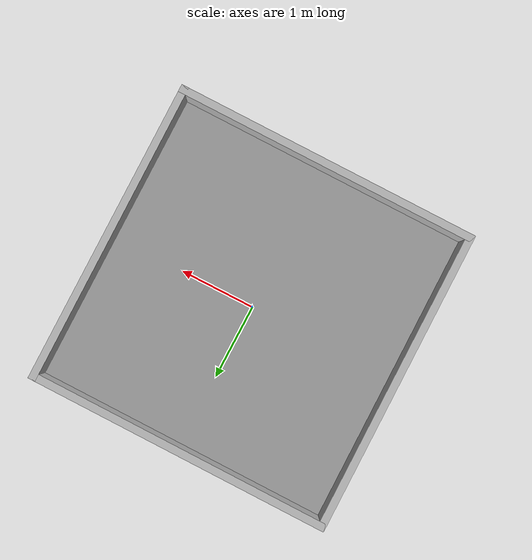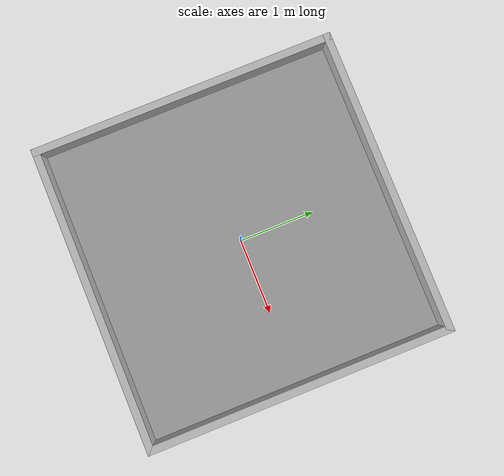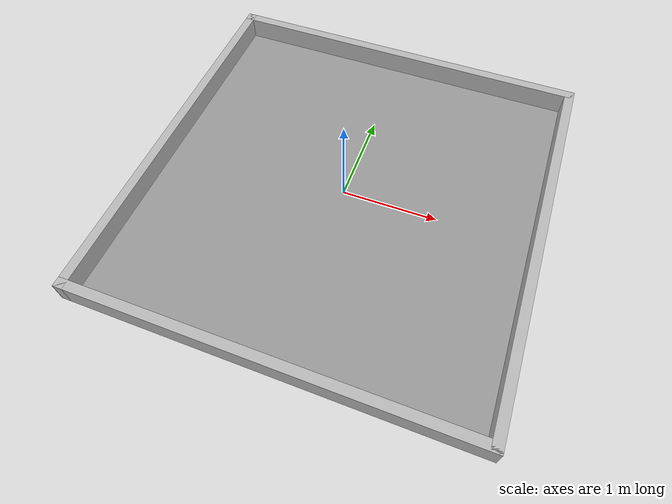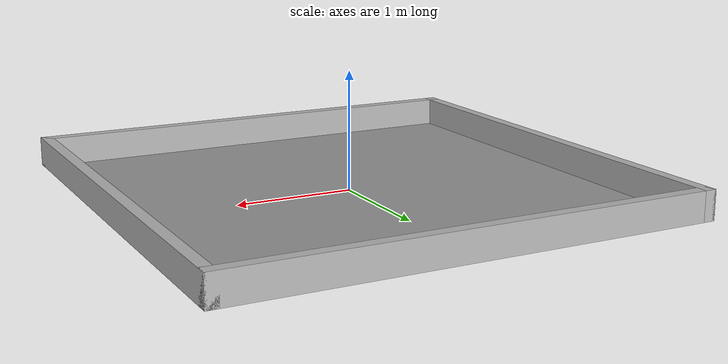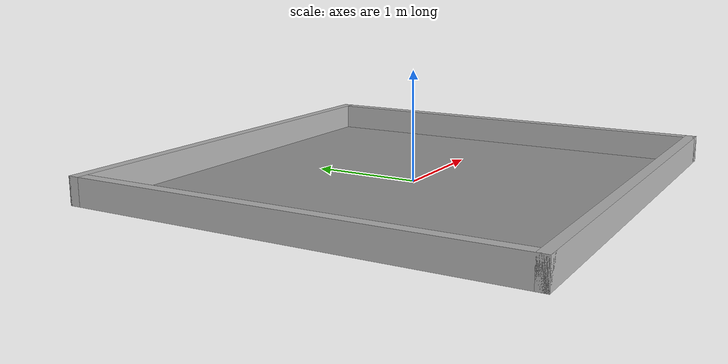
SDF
<?xml version="1.0" ?>
<sdf version="1.4">
  <!-- We use a custom world for the robobo so that the camera angle is launched correctly -->

  <world name="default">

    <model name="my_ground_plane">
      <static>true</static>
      <link name="link">
        <collision name="collision">
          <geometry>
            <plane>
              <normal>0 0 1</normal>
              <size>4 4</size>
            </plane>
          </geometry>
          <surface>
            <friction>
              <ode>
                <mu>100</mu>
                <mu2>50</mu2>
              </ode>
            </friction>
          </surface>
          <max_contacts>10</max_contacts>
        </collision>
        <visual name="visual">
          <cast_shadows>false</cast_shadows>
          <geometry>
            <plane>
              <normal>0 0 1</normal>
              <size>4 4</size>
            </plane>
          </geometry>
          <material>
            <script>
              <name>Gazebo/Grey</name>
            </script>
          </material>
        </visual>
        <self_collide>0</self_collide>
        <kinematic>0</kinematic>
        <gravity>1</gravity>
      </link>
    </model>

    <!-- Global light source -->

    <light name='user_directional_light_0' type='directional'>
      <pose frame=''>0.0 0.0 1 0 -0 0</pose>
      <diffuse>0.5 0.5 0.5 1</diffuse>
      <specular>0.1 0.1 0.1 1</specular>
      <direction>0.1 0.1 -0.9</direction>
      <attenuation>
        <range>20</range>
        <constant>0.5</constant>
        <linear>0.01</linear>
        <quadratic>0.001</quadratic>
      </attenuation>
      <cast_shadows>1</cast_shadows>
    </light>

    <physics type="ode">
      <max_step_size>0.001</max_step_size>
      <real_time_factor>1</real_time_factor>
      <real_time_update_rate>2000</real_time_update_rate>
      <ode>
        <solver>
          <type>quick</type>
          <iters>100</iters>
          <sor>1.3</sor>
        </solver>
        <constraints>
          <cfm>0</cfm>
          <erp>0.2</erp>
          <contact_max_correcting_vel>100</contact_max_correcting_vel>
          <contact_surface_layer>0.001</contact_surface_layer>
        </constraints>
      </ode>
    </physics>

    <!-- Focus camera on tall pendulum -->
    <gui fullscreen='0'>
      <camera name='user_camera'>
        <pose>0 0 7 0 1.570796 1.570796</pose>
        <view_controller>orbit</view_controller>
      </camera>
    </gui>

    <model name="walls">
        <static>1</static>
        <link name='wall1'>
            <pose>0 2 0.125 0 0 0</pose>
            <collision name='wall_body'>
                <geometry>
                    <box>
                        <size>4.1 0.1 0.25</size>
                    </box>
                </geometry>
            </collision>
            <visual name='wall_visual'>
                <geometry>
                    <box>
                        <size>4.1 0.1 0.25</size>
                    </box>
                </geometry>

            </visual>
        </link>
        <link name='wall2'>
            <pose>0 -2 0.125 0 0 0</pose>
            <collision name='wall_body'>
                <geometry>
                    <box>
                        <size>4.1 0.1 0.25</size>
                    </box>
                </geometry>
            </collision>
            <visual name='wall_visual'>
                <geometry>
                    <box>
                        <size>4.1 0.1 0.25</size>
                    </box>
                </geometry>

            </visual>
        </link>
        <link name='wall3'>
            <pose>2 0 0.125 0 0 1.57079632679</pose>
            <collision name='wall_body'>
                <geometry>
                    <box>
                        <size>4.1 0.1 0.25</size>
                    </box>
                </geometry>
            </collision>
            <visual name='wall_visual'>
                <geometry>
                    <box>
                        <size>4.1 0.1 0.25</size>
                    </box>
                </geometry>

            </visual>
        </link>
        <link name='wall4'>
            <pose>-2 0 0.125 0 0 1.57079632679</pose>
            <collision name='wall_body'>
                <geometry>
                    <box>
                        <size>4.1 0.1 0.25</size>
                    </box>
                </geometry>
            </collision>
            <visual name='wall_visual'>
                <geometry>
                    <box>
                        <size>4.1 0.1 0.25</size>
                    </box>
                </geometry>

            </visual>
        </link>

    </model>

  </world>
</sdf>
